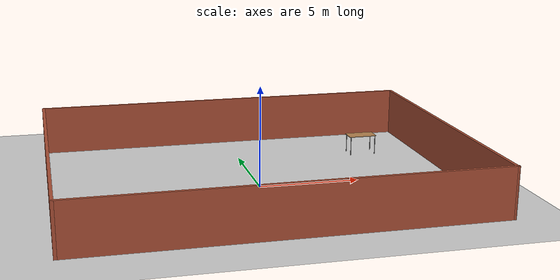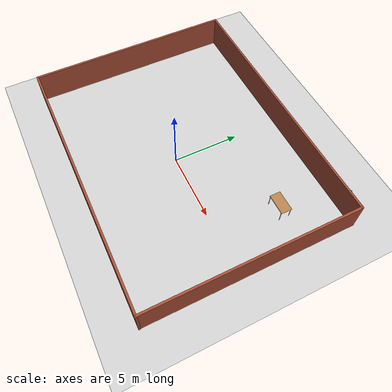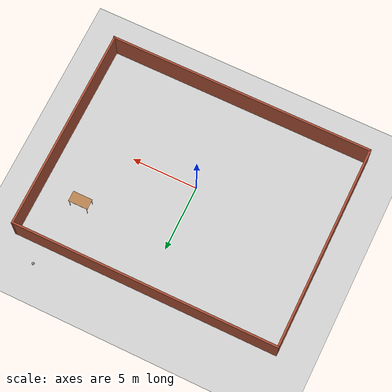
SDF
<sdf version="1.6">
 <world name="default">
  <light name="sun" type="directional">
   <pose>0 0 10 0 -0 0</pose>
   <diffuse>0.8 0.8 0.8 1</diffuse>
   <specular>0.2 0.2 0.2 1</specular>
   <attenuation>
    <range>1000</range>
    <constant>0.9</constant>
    <linear>0.01</linear>
    <quadratic>0.001</quadratic>
   </attenuation>
   <direction>-0.5 0.1 -0.9</direction>
  </light>
  <model name="ground_plane">
   <static>1</static>
   <link name="link">
    <collision name="collision">
     <geometry><plane><normal>0 0 1</normal><size>100 100</size></plane></geometry>
     <surface>
      <contact><collide_bitmask>65535</collide_bitmask></contact>
      <friction><ode><mu>100</mu><mu2>50</mu2></ode></friction>
     </surface>
    </collision>
    <visual name="visual">
     <cast_shadows>0</cast_shadows>
     <geometry><plane><normal>0 0 1</normal><size>100 100</size></plane></geometry>
     <material>
      <script><uri>file://media/materials/scripts/gazebo.material</uri><name>Gazebo/Grey</name></script>
     </material>
    </visual>
   </link>
  </model>
  <gravity>0 0 -9.8</gravity>
  <magnetic_field>6e-06 2.3e-05 -4.2e-05</magnetic_field>
  <atmosphere type="adiabatic"/>
  <physics name="default_physics" default="0" type="ode">
   <max_step_size>0.001</max_step_size>
   <real_time_factor>1</real_time_factor>
   <real_time_update_rate>1000</real_time_update_rate>
  </physics>
  <scene><ambient>0.4 0.4 0.4 1</ambient><background>0.7 0.7 0.7 1</background><shadows>1</shadows></scene>
  <spherical_coordinates>
   <surface_model>EARTH_WGS84</surface_model>
   <latitude_deg>0</latitude_deg>
   <longitude_deg>0</longitude_deg>
   <elevation>0</elevation>
   <heading_deg>0</heading_deg>
  </spherical_coordinates>
  <model name="MAE">
   <pose>-0.068248 0.737019 0 0 -0 0</pose>
   <link name="Wall_1">
    <collision name="Wall_1_Collision">
     <geometry><box><size>15.577 0.15 2.5</size></box></geometry>
     <pose>0 0 1.25 0 -0 0</pose>
    </collision>
    <visual name="Wall_1_Visual">
     <pose>0 0 1.25 0 -0 0</pose>
     <geometry><box><size>15.577 0.15 2.5</size></box></geometry>
     <material>
      <script><uri>file://media/materials/scripts/gazebo.material</uri><name>Gazebo/Bricks</name></script>
      <ambient>1 1 1 1</ambient>
     </material>
     <meta><layer>0</layer></meta>
    </visual>
    <pose>-9.98245 -0.013284 0 0 0 -1.5708</pose>
   </link>
   <link name="Wall_2">
    <collision name="Wall_2_Collision">
     <geometry><box><size>20.0798 0.15 2.5</size></box></geometry>
     <pose>0 0 1.25 0 -0 0</pose>
    </collision>
    <visual name="Wall_2_Visual">
     <pose>0 0 1.25 0 -0 0</pose>
     <geometry><box><size>20.0798 0.15 2.5</size></box></geometry>
     <material>
      <script><uri>file://media/materials/scripts/gazebo.material</uri><name>Gazebo/Bricks</name></script>
      <ambient>1 1 1 1</ambient>
     </material>
     <meta><layer>0</layer></meta>
    </visual>
    <pose>0.017629 -7.7266 0 0 -0 0</pose>
   </link>
   <link name="Wall_5">
    <collision name="Wall_5_Collision">
     <geometry><box><size>15.6033 0.15 2.5</size></box></geometry>
     <pose>0 0 1.25 0 -0 0</pose>
    </collision>
    <visual name="Wall_5_Visual">
     <pose>0 0 1.25 0 -0 0</pose>
     <geometry><box><size>15.6033 0.15 2.5</size></box></geometry>
     <material>
      <script><uri>file://media/materials/scripts/gazebo.material</uri><name>Gazebo/Bricks</name></script>
      <ambient>1 1 1 1</ambient>
     </material>
     <meta><layer>0</layer></meta>
    </visual>
    <pose>9.96065 1.6e-05 0 0 -0 1.56907</pose>
   </link>
   <link name="Wall_6">
    <collision name="Wall_6_Collision">
     <geometry><box><size>20.08 0.15 2.5</size></box></geometry>
     <pose>0 0 1.25 0 -0 0</pose>
    </collision>
    <visual name="Wall_6_Visual">
     <pose>0 0 1.25 0 -0 0</pose>
     <geometry><box><size>20.08 0.15 2.5</size></box></geometry>
     <material>
      <script><uri>file://media/materials/scripts/gazebo.material</uri><name>Gazebo/Bricks</name></script>
      <ambient>1 1 1 1</ambient>
     </material>
     <meta><layer>0</layer></meta>
    </visual>
    <pose>-0.01755 7.72663 0 0 -0 3.14159</pose>
   </link>
   <static>1</static>
  </model>
  <model name="table">
   <static>1</static>
   <link name="link">
    <collision name="surface">
     <pose>0 0 1 0 -0 0</pose>
     <geometry><box><size>1.5 0.8 0.03</size></box></geometry>
     <surface><friction><ode><mu>0.6</mu><mu2>0.6</mu2></ode></friction></surface>
    </collision>
    <visual name="visual1">
     <pose>0 0 1 0 -0 0</pose>
     <geometry><box><size>1.5 0.8 0.03</size></box></geometry>
     <material>
      <script><uri>file://media/materials/scripts/gazebo.material</uri><name>Gazebo/Wood</name></script>
     </material>
    </visual>
    <collision name="front_left_leg">
     <pose>0.68 0.38 0.5 0 -0 0</pose>
     <geometry><cylinder><radius>0.02</radius><length>1</length></cylinder></geometry>
    </collision>
    <visual name="front_left_leg">
     <pose>0.68 0.38 0.5 0 -0 0</pose>
     <geometry><cylinder><radius>0.02</radius><length>1</length></cylinder></geometry>
     <material>
      <script><uri>file://media/materials/scripts/gazebo.material</uri><name>Gazebo/Grey</name></script>
     </material>
    </visual>
    <collision name="front_right_leg">
     <pose>0.68 -0.38 0.5 0 -0 0</pose>
     <geometry><cylinder><radius>0.02</radius><length>1</length></cylinder></geometry>
    </collision>
    <visual name="front_right_leg">
     <pose>0.68 -0.38 0.5 0 -0 0</pose>
     <geometry><cylinder><radius>0.02</radius><length>1</length></cylinder></geometry>
     <material>
      <script><uri>file://media/materials/scripts/gazebo.material</uri><name>Gazebo/Grey</name></script>
     </material>
    </visual>
    <collision name="back_right_leg">
     <pose>-0.68 -0.38 0.5 0 -0 0</pose>
     <geometry><cylinder><radius>0.02</radius><length>1</length></cylinder></geometry>
    </collision>
    <visual name="back_right_leg">
     <pose>-0.68 -0.38 0.5 0 -0 0</pose>
     <geometry><cylinder><radius>0.02</radius><length>1</length></cylinder></geometry>
     <material>
      <script><uri>file://media/materials/scripts/gazebo.material</uri><name>Gazebo/Grey</name></script>
     </material>
    </visual>
    <collision name="back_left_leg">
     <pose>-0.68 0.38 0.5 0 -0 0</pose>
     <geometry><cylinder><radius>0.02</radius><length>1</length></cylinder></geometry>
    </collision>
    <visual name="back_left_leg">
     <pose>-0.68 0.38 0.5 0 -0 0</pose>
     <geometry><cylinder><radius>0.02</radius><length>1</length></cylinder></geometry>
     <material>
      <script><uri>file://media/materials/scripts/gazebo.material</uri><name>Gazebo/Grey</name></script>
     </material>
    </visual>
   </link>
   <pose>6.77948 4.64463 0 0 -0 0</pose>
  </model>
  <model name="aaball">
   <link name="link_0">
    <inertial>
     <mass>1</mass>
     <inertia><ixx>0.1</ixx><ixy>0</ixy><ixz>0</ixz><iyy>0.1</iyy><iyz>0</iyz><izz>0.1</izz></inertia>
    </inertial>
    <visual name="visual">
     <geometry><sphere><radius>0.1</radius></sphere></geometry>
     <material>
      <lighting>1</lighting>
      <script><uri>file://media/materials/scripts/gazebo.material</uri><name>Gazebo/Grey</name></script>
      <shader type="pixel"><normal_map>__default__</normal_map></shader>
      <ambient>1 1 1 1</ambient>
      <diffuse>1 1 1 1</diffuse>
      <specular>1 1 1 1</specular>
      <emissive>1 1 1 1</emissive>
     </material>
    </visual>
    <collision name="collision">
     <geometry><sphere><radius>0.1</radius></sphere></geometry>
     <surface>
      <friction>
       <ode><mu>1</mu><mu2>1</mu2><fdir1>0 0 0</fdir1><slip1>0</slip1><slip2>0</slip2></ode>
       <torsional>
        <coefficient>1</coefficient>
        <patch_radius>0</patch_radius>
        <surface_radius>0</surface_radius>
        <use_patch_radius>1</use_patch_radius>
        <ode><slip>0</slip></ode>
       </torsional>
      </friction>
      <bounce><restitution_coefficient>0</restitution_coefficient><threshold>1e+06</threshold></bounce>
      <contact>
       <collide_without_contact>0</collide_without_contact>
       <collide_without_contact_bitmask>1</collide_without_contact_bitmask>
       <collide_bitmask>1</collide_bitmask>
       <ode>
        <soft_cfm>0</soft_cfm>
        <soft_erp>0.2</soft_erp>
        <kp>1e+13</kp>
        <kd>1</kd>
        <max_vel>0.01</max_vel>
        <min_depth>0</min_depth>
       </ode>
       <bullet>
        <split_impulse>1</split_impulse>
        <split_impulse_penetration_threshold>-0.01</split_impulse_penetration_threshold>
        <soft_cfm>0</soft_cfm>
        <soft_erp>0.2</soft_erp>
        <kp>1e+13</kp>
        <kd>1</kd>
       </bullet>
      </contact>
     </surface>
    </collision>
   </link>
   <static>0</static>
   <pose>7.81091 9.95248 0.1 0 -0 0</pose>
  </model>
 </world>
</sdf>
